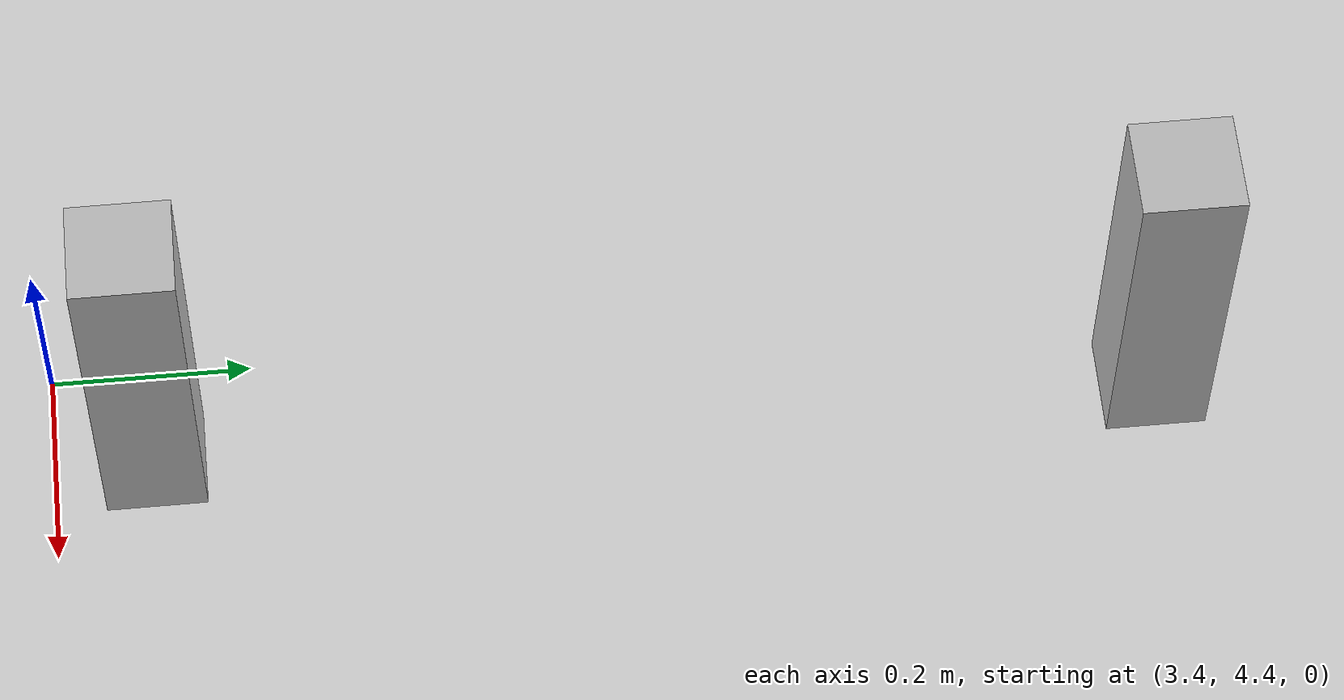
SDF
<?xml version="1.0" ?>
<sdf version="1.4">
  <world name="default">
    <include>
      <uri>model://ground_plane</uri>
    </include>
    <include>
      <uri>model://sun</uri>
    </include>
    <model name="box">
      <pose>3.5 4.5 0.2 0 0 0</pose>
      <static>true</static>
      <link name="box">
        <visual name="box_visual">
          <pose>0 0 0 0 0 0</pose>
          <geometry>
            <box>
              <size>0.1 0.1 0.4</size>
            </box>
          </geometry>
        </visual>
        <collision name="box_collision">
          <pose>0 0 0 0 0 0</pose>
          <geometry>
            <box>
              <size>0.1 0.1 0.4</size>
            </box>
          </geometry>
        </collision>
      </link>
    </model>
    <model name="box_1">
      <pose>3.5 5.5 0.2 0 0 0</pose>
      <static>true</static>
      <link name="box">
        <visual name="box_visual">
          <pose>0 0 0 0 0 0</pose>
          <geometry>
            <box>
              <size>0.1 0.1 0.4</size>
            </box>
          </geometry>
        </visual>
        <collision name="box_collision">
          <pose>0 0 0 0 0 0</pose>
          <geometry>
            <box>
              <size>0.1 0.1 0.4</size>
            </box>
          </geometry>
        </collision>
      </link>
    </model>
    <physics type="ode">
      <gravity>0 0 -9.81</gravity>
    </physics>
  </world>
</sdf>
